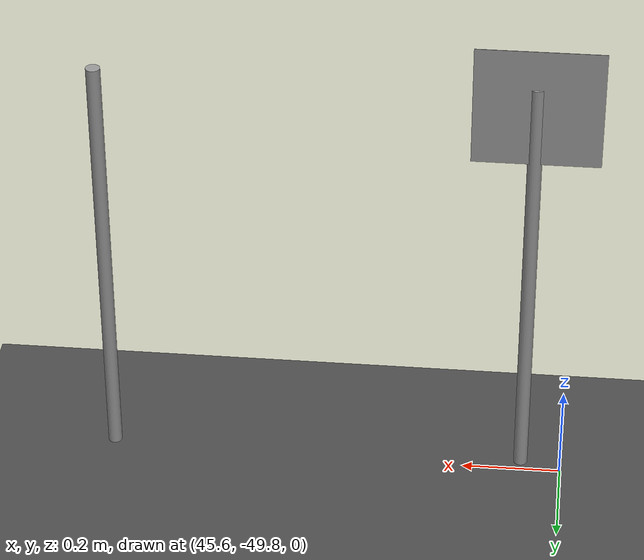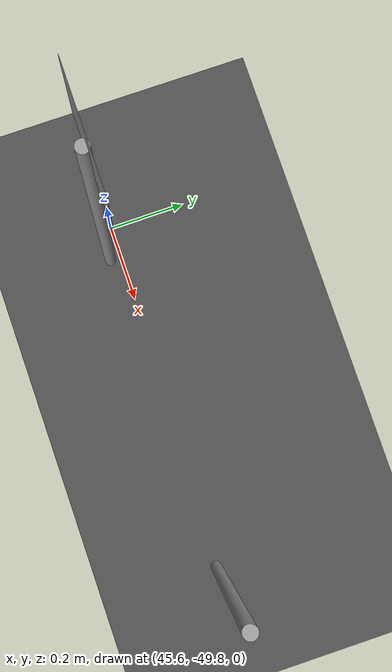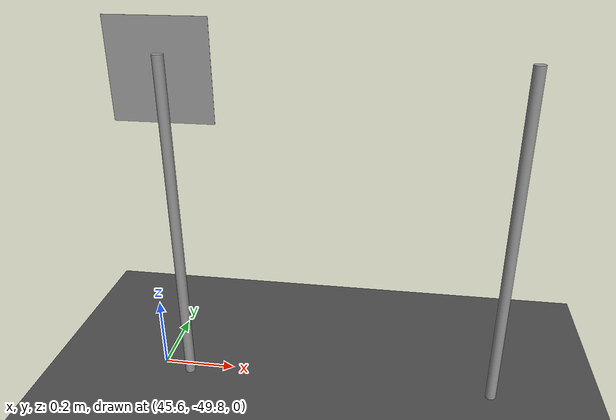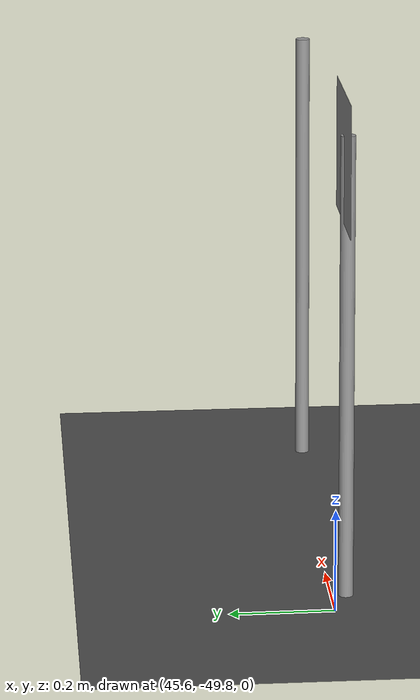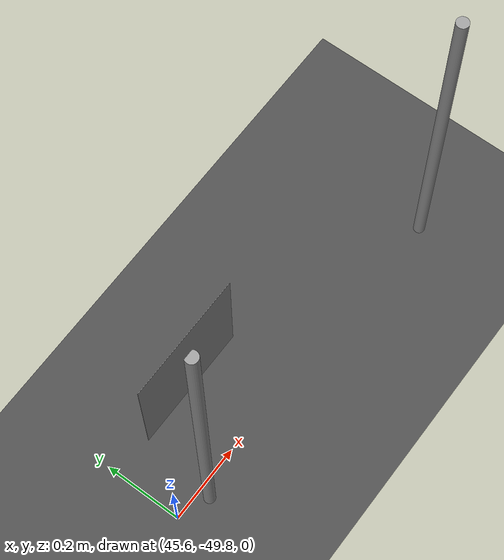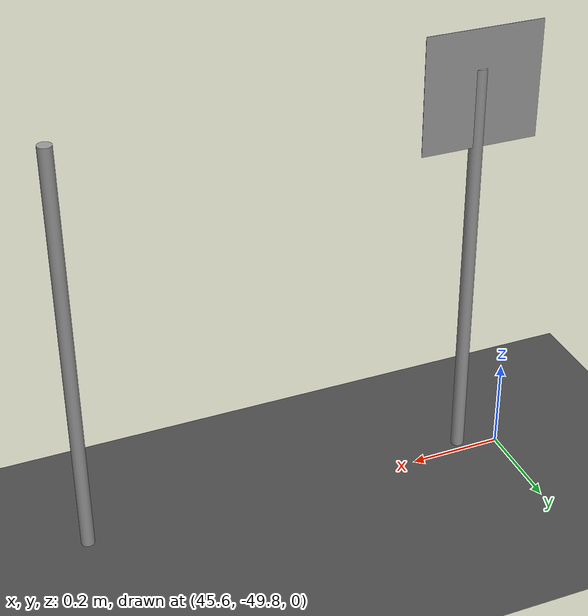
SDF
<sdf version="1.7">
 <world name="default">
  <model name="ground_plane">
   <static>1</static>
   <link name="link">
    <collision name="collision">
     <geometry><plane><normal>0 0 1</normal><size>100 100</size></plane></geometry>
     <surface>
      <contact><collide_bitmask>65535</collide_bitmask></contact>
      <friction><ode><mu>100</mu><mu2>50</mu2></ode></friction>
     </surface>
    </collision>
    <visual name="visual">
     <cast_shadows>0</cast_shadows>
     <geometry><plane><normal>0 0 1</normal><size>100 100</size></plane></geometry>
     <material>
      <script><uri>file://media/materials/scripts/gazebo.material</uri><name>Gazebo/DarkGrey</name></script>
     </material>
    </visual>
   </link>
  </model>
  <model name="unit_cylinder_clone_clone_0_clone_1_clone_clone_clone_0">
   <pose>45.6816 -49.8279 0.449175 -0 1.1e-05 -0.000149</pose>
   <link name="link">
    <inertial>
     <mass>1</mass>
     <inertia><ixx>0.145833</ixx><ixy>0</ixy><ixz>0</ixz><iyy>0.145833</iyy><iyz>0</iyz><izz>0.125</izz></inertia>
    </inertial>
    <collision name="collision">
     <geometry><cylinder><radius>0.0142338</radius><length>0.898369</length></cylinder></geometry>
    </collision>
    <visual name="visual">
     <geometry><cylinder><radius>0.0142338</radius><length>0.898369</length></cylinder></geometry>
     <material>
      <script><name>Gazebo/Grey</name><uri>file://media/materials/scripts/gazebo.material</uri></script>
     </material>
    </visual>
   </link>
  </model>
  <model name="unit_cylinder_clone_clone_0_clone_1_clone_clone_clone_1">
   <pose>46.5274 -49.823 0.449175 -4e-06 -3e-06 -0.000155</pose>
   <link name="link">
    <inertial>
     <mass>1</mass>
     <inertia><ixx>0.145833</ixx><ixy>0</ixy><ixz>0</ixz><iyy>0.145833</iyy><iyz>0</iyz><izz>0.125</izz></inertia>
    </inertial>
    <collision name="collision">
     <geometry><cylinder><radius>0.0142338</radius><length>0.898369</length></cylinder></geometry>
    </collision>
    <visual name="visual">
     <geometry><cylinder><radius>0.0142338</radius><length>0.898369</length></cylinder></geometry>
     <material>
      <script><name>Gazebo/Grey</name><uri>file://media/materials/scripts/gazebo.material</uri></script>
     </material>
    </visual>
   </link>
  </model>
  <model name="park_clone_clone_0">
   <link name="link">
    <inertial>
     <mass>0.521459</mass>
     <inertia>
      <ixx>0.0434554</ixx>
      <ixy>0</ixy>
      <ixz>0</ixz>
      <iyy>0.0869098</iyy>
      <iyz>0</iyz>
      <izz>0.0434554</izz>
     </inertia>
    </inertial>
    <gravity>0</gravity>
    <visual name="visual">
     <geometry><box><size>0.25 0.003487 0.25</size></box></geometry>
     <material>
      <script>
       <uri>model://park/materials/scripts/park.material</uri>
       <uri>model://park/materials/textures/park.png</uri>
       <name>RepeatedTexture12</name>
      </script>
      <shader type="pixel"><normal_map>__default__</normal_map></shader>
      <ambient>0 0 0 1</ambient>
      <diffuse>0.7 0.7 0.7 1</diffuse>
      <specular>0.01 0.01 0.01 1</specular>
      <emissive>0 0 0 1</emissive>
      <lighting>0</lighting>
     </material>
     <transparency>1</transparency>
    </visual>
    <collision name="collision">
     <geometry><box><size>0.25 0.0001 0.25</size></box></geometry>
     <surface>
      <friction>
       <ode><mu>1</mu><mu2>1</mu2><fdir1>0 0 0</fdir1><slip1>0</slip1><slip2>0</slip2></ode>
       <torsional>
        <coefficient>1</coefficient>
        <patch_radius>0</patch_radius>
        <surface_radius>0</surface_radius>
        <use_patch_radius>1</use_patch_radius>
        <ode><slip>0</slip></ode>
       </torsional>
      </friction>
      <bounce><restitution_coefficient>0</restitution_coefficient><threshold>1e+06</threshold></bounce>
      <contact>
       <collide_without_contact>0</collide_without_contact>
       <collide_without_contact_bitmask>1</collide_without_contact_bitmask>
       <collide_bitmask>1</collide_bitmask>
       <ode>
        <soft_cfm>0</soft_cfm>
        <soft_erp>0.2</soft_erp>
        <kp>1e+13</kp>
        <kd>1</kd>
        <max_vel>0.01</max_vel>
        <min_depth>0</min_depth>
       </ode>
       <bullet>
        <split_impulse>1</split_impulse>
        <split_impulse_penetration_threshold>-0.01</split_impulse_penetration_threshold>
        <soft_cfm>0</soft_cfm>
        <soft_erp>0.2</soft_erp>
        <kp>1e+13</kp>
        <kd>1</kd>
       </bullet>
      </contact>
     </surface>
    </collision>
   </link>
   <static>1</static>
   <pose>45.6777 -49.8133 0.857075 0 -0 0</pose>
  </model>
  <model name="square_clone_1">
   <link name="link">
    <inertial>
     <mass>1</mass>
     <inertia>
      <ixx>0.166667</ixx>
      <ixy>0</ixy>
      <ixz>0</ixz>
      <iyy>0.166667</iyy>
      <iyz>0</iyz>
      <izz>0.166667</izz>
     </inertia>
    </inertial>
    <gravity>0</gravity>
    <visual name="visual">
     <geometry><box><size>0.250163 0.000931 0.247777</size></box></geometry>
     <material>
      <script><name>Gazebo/Grey</name><uri>file://media/materials/scripts/gazebo.material</uri></script>
      <shader type="pixel"><normal_map>__default__</normal_map></shader>
     </material>
    </visual>
    <collision name="collision">
     <geometry><box><size>0.250163 0.000931 0.247777</size></box></geometry>
     <surface>
      <friction>
       <ode><mu>1</mu><mu2>1</mu2><fdir1>0 0 0</fdir1><slip1>0</slip1><slip2>0</slip2></ode>
       <torsional>
        <coefficient>1</coefficient>
        <patch_radius>0</patch_radius>
        <surface_radius>0</surface_radius>
        <use_patch_radius>1</use_patch_radius>
        <ode><slip>0</slip></ode>
       </torsional>
      </friction>
      <bounce><restitution_coefficient>0</restitution_coefficient><threshold>1e+06</threshold></bounce>
      <contact>
       <collide_without_contact>0</collide_without_contact>
       <collide_without_contact_bitmask>1</collide_without_contact_bitmask>
       <collide_bitmask>1</collide_bitmask>
       <ode>
        <soft_cfm>0</soft_cfm>
        <soft_erp>0.2</soft_erp>
        <kp>1e+13</kp>
        <kd>1</kd>
        <max_vel>0.01</max_vel>
        <min_depth>0</min_depth>
       </ode>
       <bullet>
        <split_impulse>1</split_impulse>
        <split_impulse_penetration_threshold>-0.01</split_impulse_penetration_threshold>
        <soft_cfm>0</soft_cfm>
        <soft_erp>0.2</soft_erp>
        <kp>1e+13</kp>
        <kd>1</kd>
       </bullet>
      </contact>
     </surface>
    </collision>
   </link>
   <static>1</static>
   <pose>45.6789 -49.8197 0.858223 0 -0 0</pose>
  </model>
 </world>
</sdf>
